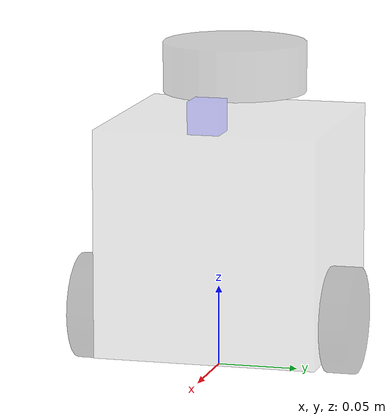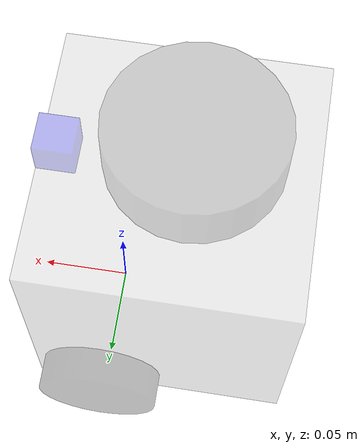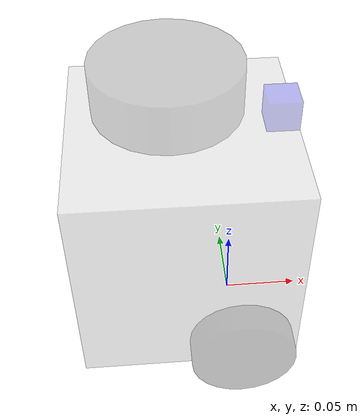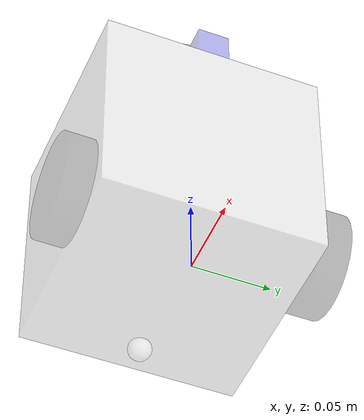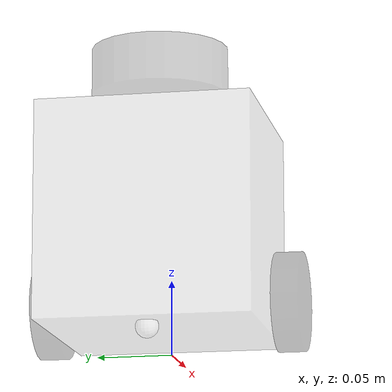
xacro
<?xml version="1.0"?>
<robot xmlns:xacro="http://www.ros.org/wiki/xacro" name="turtlebot">

  <xacro:arg name="namespace" default="lee"/>
  <xacro:arg name="odom_frame" default="odom_lee"/>

  <!-- ========== MATERIALS ========== -->
  <material name="black">
    <color rgba="0.0 0.0 0.0 0.3"/>
  </material>

  <material name="dark">
    <color rgba="0.3 0.3 0.3 0.3"/>
  </material>

  <material name="light_grey">
    <color rgba="0.75 0.75 0.75 0.3"/>
  </material>

  <material name="blue">
    <color rgba="0.0 0.0 0.8 0.3"/>
  </material>

  <!-- ========== BASE FOOTPRINT ========== -->
  <link name="base_footprint"/>

  <joint name="base_joint" type="fixed">
    <parent link="base_footprint"/>
    <child link="base_link"/>
    <origin xyz="0.0 0.0 0.010" rpy="0 0 0"/>
  </joint>

  <!-- ========== BASE LINK ========== -->
  <link name="base_link">
    <visual>
      <origin xyz="-0.032 0 0.070" rpy="0 0 0"/>
      <geometry>
        <box size="0.140 0.140 0.143"/>
      </geometry>
      <material name="light_grey"/>
    </visual>

    <collision>
      <origin xyz="-0.032 0 0.070" rpy="0 0 0"/>
      <geometry>
        <box size="0.140 0.140 0.143"/>
      </geometry>
    </collision>

    <inertial>
      <origin xyz="-0.032 0 0" rpy="0 0 0"/>
      <mass value="8.2573504e-01"/>
      <inertia ixx="2.2124416e-03" ixy="-1.2294101e-05" ixz="3.4938785e-05"
               iyy="2.1193702e-03" iyz="-5.0120904e-06" izz="2.0064271e-03"/>
    </inertial>
  </link>

  <!-- ========== WHEEL MACRO ========== -->
  <xacro:macro name="wheel" params="prefix y_offset">
    <link name="${prefix}_link">
      <visual>
        <origin xyz="0 0 0" rpy="0 0 0"/>
        <geometry>
          <cylinder length="0.018" radius="0.033"/>
        </geometry>
        <material name="black"/>
      </visual>
      <collision>
        <origin xyz="0 0 0" rpy="0 0 0"/>
        <geometry>
          <cylinder length="0.018" radius="0.033"/>
        </geometry>
      </collision>
      <inertial>
        <origin xyz="0 0 0"/>
        <mass value="2.8498940e-02"/>
        <inertia ixx="1.1175580e-05" ixy="-4.2369783e-11" ixz="-5.9381719e-09"
                 iyy="1.1192413e-05" iyz="-1.4400107e-11" izz="2.0712558e-05"/>
      </inertial>
    </link>

    <joint name="${prefix}_joint" type="continuous">
      <parent link="base_link"/>
      <child link="${prefix}_link"/>
      <origin xyz="0.0 ${y_offset} 0.023" rpy="-1.57 0 0"/>
      <axis xyz="0 0 1"/>
    </joint>
  </xacro:macro>

  <!-- ========== WHEELS ========== -->
  <xacro:wheel prefix="wheel_left"  y_offset="0.08"/>
  <xacro:wheel prefix="wheel_right" y_offset="-0.08"/>

  <!-- ========== CASTER MACRO ========== -->
  <xacro:macro name="caster" params="prefix x_offset">
    <joint name="caster_${prefix}_joint" type="fixed">
      <parent link="base_link"/>
      <child link="caster_${prefix}_link"/>
      <origin xyz="${x_offset} 0 -0.004" rpy="-1.57 0 0"/>
    </joint>

    <link name="caster_${prefix}_link">
      <visual>
        <origin xyz="0 0.001 0" rpy="0 0 0"/>
        <geometry>
          <sphere radius="0.0075"/>
        </geometry>
        <material name="light_grey"/>
      </visual>
      <collision>
        <origin xyz="0 0.001 0" rpy="0 0 0"/>
        <geometry>
          <sphere radius="0.005"/>
        </geometry>
      </collision>
      <inertial>
        <origin xyz="0 0 0"/>
        <mass value="0.005"/>
        <inertia ixx="0.001" ixy="0.0" ixz="0.0"
                 iyy="0.001" iyz="0.0" izz="0.001"/>
      </inertial>
    </link>
  </xacro:macro>

  <!-- ========== CASTERS ========== -->
  <xacro:caster prefix="back"  x_offset="-0.081"/>

  <!-- ========== IMU ========== -->
  <joint name="imu_joint" type="fixed">
    <parent link="base_link"/>
    <child link="imu_link"/>
    <origin xyz="-0.032 0 0.068" rpy="0 0 0"/>
  </joint>
  <link name="imu_link"/>

  <!-- ========== BASE SCAN (LDS) ========== -->
  <joint name="scan_joint" type="fixed">
    <parent link="base_link"/>
    <child link="base_scan"/>
    <origin xyz="-0.04 0 0.172" rpy="0 0 0"/>
  </joint>

  <link name="base_scan">
    <visual>
      <origin xyz="0 0 0.0" rpy="0 0 0"/>
      <geometry>
        <cylinder length="0.0315" radius="0.045"/>
      </geometry>
      <material name="dark"/>
    </visual>
    <collision>
      <origin xyz="0.015 0 -0.0065" rpy="0 0 0"/>
      <geometry>
        <cylinder length="0.0315" radius="0.045"/>
      </geometry>
    </collision>
    <inertial>
      <mass value="0.114"/>
      <origin xyz="0 0 0"/>
      <inertia ixx="0.001" ixy="0.0" ixz="0.0"
               iyy="0.001" iyz="0.0" izz="0.001"/>
    </inertial>
  </link>

  <!-- ========== CAMERA ========== -->
  <joint name="camera_joint" type="fixed">
    <parent link="base_link"/>
    <child link="camera_link"/>
    <origin xyz="0.028 0 0.1515" rpy="0 0 0"/>
  </joint>

  <link name="camera_link">
    <visual>
      <geometry>
        <box size="0.02 0.02 0.02"/>
      </geometry>
      <material name="blue"/>
    </visual>
    <collision>
      <geometry>
        <box size="0.02 0.05 0.02"/>
      </geometry>
    </collision>
    <inertial>
      <mass value="0.001"/>
      <inertia ixx="0.0001" ixy="0" ixz="0"
               iyy="0.0001" iyz="0"
               izz="0.0001"/>
    </inertial>
  </link>

  <!-- Gazebo plugins & physics properties -->
  <xacro:include filename="turtlebot_gaze.xacro"/>
</robot>
